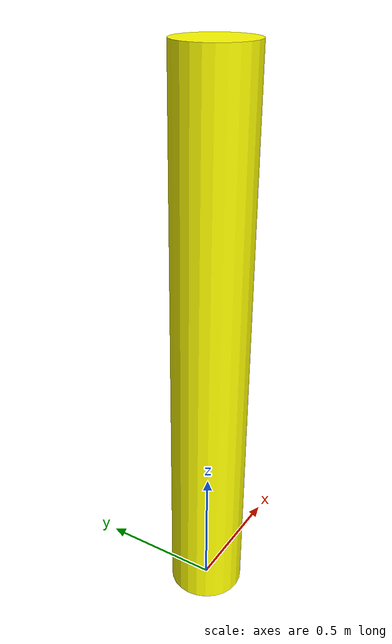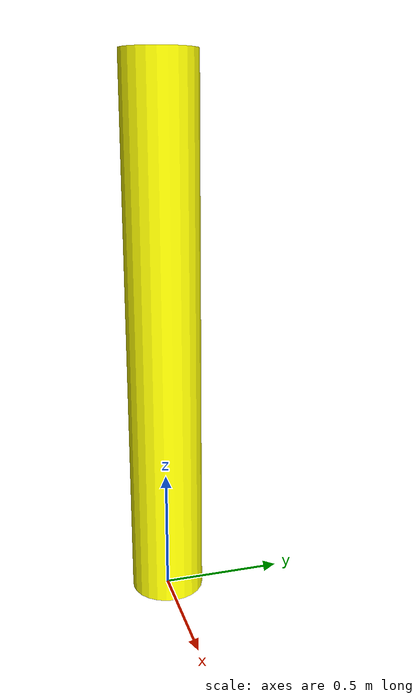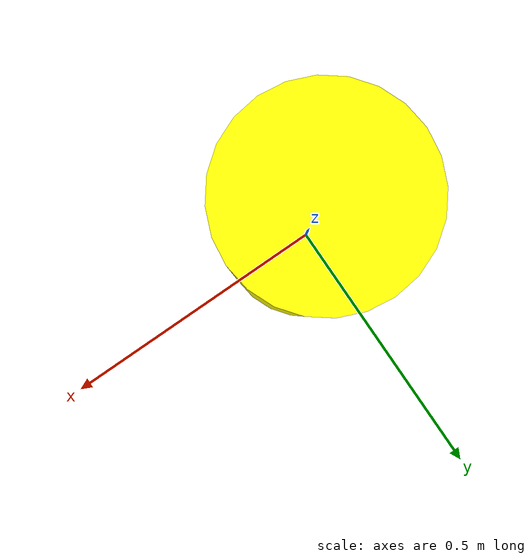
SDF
<?xml version="1.0" ?>
<sdf version="1.6">
  <model name="green_obstacle">
    <link name="base_link">
      <!-- Visual properties of the cylinder -->
      <visual name="cylinder_visual">
        <pose>0 0 1.1 0 0 0</pose>
        <geometry>
          <cylinder>
            <radius>0.15</radius>
            <length>2.2</length>
          </cylinder>
        </geometry>
        <material>
          <ambient>1 1 0 1</ambient>
          <diffuse>1 1 0 1</diffuse>
          <specular>0.5 0.5 0.5 1</specular>
          <emissive>0 0 0 0</emissive>
        </material>
      </visual>

      <!-- Physical properties of the cylinder -->
      <collision name="cylinder_collision">
        <pose>0 0 1.1 0 0 0</pose>
        <geometry>
          <cylinder>
            <radius>0.15</radius>
            <length>2.2</length>
          </cylinder>
        </geometry>
      </collision>

      <!-- Inertial properties of the cylinder -->
      <inertial>
        <pose>0 0 1.1 0 0 0</pose>
        <mass>10</mass>
        <inertia>
          <ixx>0.1541</ixx>
          <ixy>0</ixy>
          <ixz>0</ixz>
          <iyy>0.1541</iyy>
          <iyz>0</iyz>
          <izz>0.0169</izz>
        </inertia>
      </inertial>
    </link>
  </model>
</sdf>
